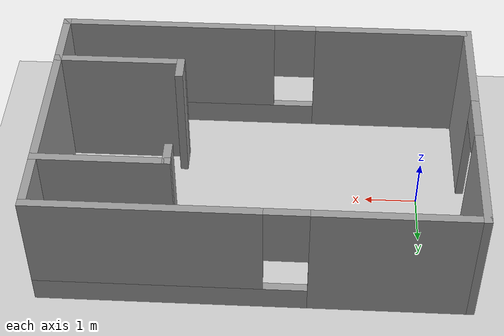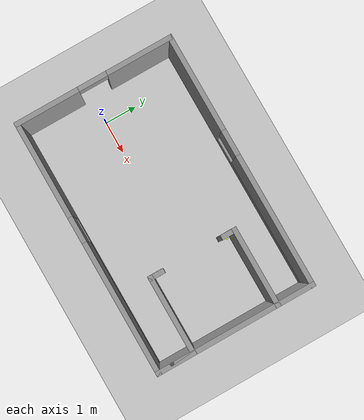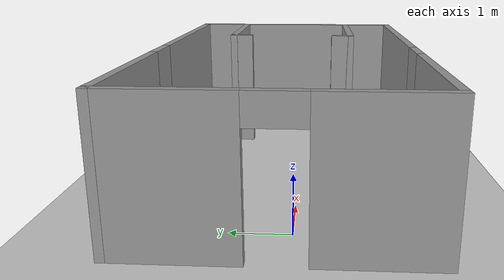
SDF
<sdf version="1.7">
 <world name="default">
  <light name="sun" type="directional">
   <pose>0 0 10 0 -0 0</pose>
   <diffuse>0.8 0.8 0.8 1</diffuse>
   <specular>0.2 0.2 0.2 1</specular>
   <attenuation>
    <range>1000</range>
    <constant>0.9</constant>
    <linear>0.01</linear>
    <quadratic>0.001</quadratic>
   </attenuation>
   <direction>-0.5 0.1 -0.9</direction>
   <spot><inner_angle>0</inner_angle><outer_angle>0</outer_angle><falloff>0</falloff></spot>
  </light>
  <model name="ground_plane">
   <static>1</static>
   <link name="link">
    <collision name="collision">
     <geometry><plane><normal>0 0 1</normal><size>100 100</size></plane></geometry>
     <surface>
      <contact><collide_bitmask>65535</collide_bitmask></contact>
      <friction><ode><mu>100</mu><mu2>50</mu2></ode></friction>
     </surface>
    </collision>
    <visual name="visual">
     <cast_shadows>0</cast_shadows>
     <geometry><plane><normal>0 0 1</normal><size>100 100</size></plane></geometry>
     <material>
      <script><uri>file://media/materials/scripts/gazebo.material</uri><name>Gazebo/Grey</name></script>
     </material>
    </visual>
   </link>
  </model>
  <gravity>0 0 -9.8</gravity>
  <magnetic_field>6e-06 2.3e-05 -4.2e-05</magnetic_field>
  <atmosphere type="adiabatic"/>
  <physics type="ode">
   <max_step_size>0.001</max_step_size>
   <real_time_factor>1</real_time_factor>
   <real_time_update_rate>1000</real_time_update_rate>
  </physics>
  <scene><ambient>0.4 0.4 0.4 1</ambient><background>0.7 0.7 0.7 1</background><shadows>1</shadows></scene>
  <spherical_coordinates>
   <surface_model>EARTH_WGS84</surface_model>
   <latitude_deg>0</latitude_deg>
   <longitude_deg>0</longitude_deg>
   <elevation>0</elevation>
   <heading_deg>0</heading_deg>
  </spherical_coordinates>
  <model name="house">
   <link name="Wall_0">
    <pose>-3.925 0 0 0 0 -1.5708</pose>
    <visual name="Wall_0_Visual_1">
     <pose>1.49555 0 1.25 0 -0 0</pose>
     <geometry><box><size>2.0089 0.15 2.5</size></box></geometry>
     <material>
      <script><uri>file://media/materials/scripts/gazebo.material</uri><name>Gazebo/Grey</name></script>
      <ambient>1 1 1 1</ambient>
      <shader type="pixel"/>
      <emissive>0 0 0 1</emissive>
     </material>
     <meta><layer>0</layer></meta>
    </visual>
    <visual name="Wall_0_Visual_2">
     <pose>0.041099 0 2.25 0 -0 0</pose>
     <geometry><box><size>0.9 0.15 0.5</size></box></geometry>
     <material>
      <script><uri>file://media/materials/scripts/gazebo.material</uri><name>Gazebo/Grey</name></script>
      <ambient>1 1 1 1</ambient>
      <shader type="pixel"/>
      <emissive>0 0 0 1</emissive>
     </material>
     <meta><layer>0</layer></meta>
    </visual>
    <visual name="Wall_0_Visual_0">
     <pose>-1.45445 0 1.25 0 -0 0</pose>
     <geometry><box><size>2.0911 0.15 2.5</size></box></geometry>
     <material>
      <script><uri>file://media/materials/scripts/gazebo.material</uri><name>Gazebo/Grey</name></script>
      <ambient>1 1 1 1</ambient>
      <shader type="pixel"/>
      <emissive>0 0 0 1</emissive>
     </material>
     <meta><layer>0</layer></meta>
    </visual>
    <collision name="Wall_0_Collision_1">
     <pose>1.49555 0 1.25 0 -0 0</pose>
     <geometry><box><size>2.0089 0.15 2.5</size></box></geometry>
     <surface>
      <friction>
       <ode><mu>1</mu><mu2>1</mu2><fdir1>0 0 0</fdir1><slip1>0</slip1><slip2>0</slip2></ode>
       <torsional>
        <coefficient>1</coefficient>
        <patch_radius>0</patch_radius>
        <surface_radius>0</surface_radius>
        <use_patch_radius>1</use_patch_radius>
        <ode><slip>0</slip></ode>
       </torsional>
      </friction>
      <bounce><restitution_coefficient>0</restitution_coefficient><threshold>1e+06</threshold></bounce>
      <contact>
       <collide_without_contact>0</collide_without_contact>
       <collide_without_contact_bitmask>1</collide_without_contact_bitmask>
       <collide_bitmask>1</collide_bitmask>
       <ode>
        <soft_cfm>0</soft_cfm>
        <soft_erp>0.2</soft_erp>
        <kp>1e+13</kp>
        <kd>1</kd>
        <max_vel>0.01</max_vel>
        <min_depth>0</min_depth>
       </ode>
       <bullet>
        <split_impulse>1</split_impulse>
        <split_impulse_penetration_threshold>-0.01</split_impulse_penetration_threshold>
        <soft_cfm>0</soft_cfm>
        <soft_erp>0.2</soft_erp>
        <kp>1e+13</kp>
        <kd>1</kd>
       </bullet>
      </contact>
     </surface>
    </collision>
    <collision name="Wall_0_Collision_0">
     <pose>-1.45445 0 1.25 0 -0 0</pose>
     <geometry><box><size>2.0911 0.15 2.5</size></box></geometry>
     <surface>
      <friction>
       <ode><mu>1</mu><mu2>1</mu2><fdir1>0 0 0</fdir1><slip1>0</slip1><slip2>0</slip2></ode>
       <torsional>
        <coefficient>1</coefficient>
        <patch_radius>0</patch_radius>
        <surface_radius>0</surface_radius>
        <use_patch_radius>1</use_patch_radius>
        <ode><slip>0</slip></ode>
       </torsional>
      </friction>
      <bounce><restitution_coefficient>0</restitution_coefficient><threshold>1e+06</threshold></bounce>
      <contact>
       <collide_without_contact>0</collide_without_contact>
       <collide_without_contact_bitmask>1</collide_without_contact_bitmask>
       <collide_bitmask>1</collide_bitmask>
       <ode>
        <soft_cfm>0</soft_cfm>
        <soft_erp>0.2</soft_erp>
        <kp>1e+13</kp>
        <kd>1</kd>
        <max_vel>0.01</max_vel>
        <min_depth>0</min_depth>
       </ode>
       <bullet>
        <split_impulse>1</split_impulse>
        <split_impulse_penetration_threshold>-0.01</split_impulse_penetration_threshold>
        <soft_cfm>0</soft_cfm>
        <soft_erp>0.2</soft_erp>
        <kp>1e+13</kp>
        <kd>1</kd>
       </bullet>
      </contact>
     </surface>
    </collision>
    <collision name="Wall_0_Collision_2">
     <pose>0.041099 0 2.25 0 -0 0</pose>
     <geometry><box><size>0.9 0.15 0.5</size></box></geometry>
     <surface>
      <friction>
       <ode><mu>1</mu><mu2>1</mu2><fdir1>0 0 0</fdir1><slip1>0</slip1><slip2>0</slip2></ode>
       <torsional>
        <coefficient>1</coefficient>
        <patch_radius>0</patch_radius>
        <surface_radius>0</surface_radius>
        <use_patch_radius>1</use_patch_radius>
        <ode><slip>0</slip></ode>
       </torsional>
      </friction>
      <bounce><restitution_coefficient>0</restitution_coefficient><threshold>1e+06</threshold></bounce>
      <contact>
       <collide_without_contact>0</collide_without_contact>
       <collide_without_contact_bitmask>1</collide_without_contact_bitmask>
       <collide_bitmask>1</collide_bitmask>
       <ode>
        <soft_cfm>0</soft_cfm>
        <soft_erp>0.2</soft_erp>
        <kp>1e+13</kp>
        <kd>1</kd>
        <max_vel>0.01</max_vel>
        <min_depth>0</min_depth>
       </ode>
       <bullet>
        <split_impulse>1</split_impulse>
        <split_impulse_penetration_threshold>-0.01</split_impulse_penetration_threshold>
        <soft_cfm>0</soft_cfm>
        <soft_erp>0.2</soft_erp>
        <kp>1e+13</kp>
        <kd>1</kd>
       </bullet>
      </contact>
     </surface>
    </collision>
   </link>
   <link name="Wall_15">
    <pose>0 2.425 0 0 -0 0</pose>
    <visual name="Wall_15_Visual_1">
     <pose>1.51655 0 0.25 0 -0 0</pose>
     <geometry><box><size>4.96691 0.15 0.5</size></box></geometry>
     <material>
      <script><uri>file://media/materials/scripts/gazebo.material</uri><name>Gazebo/Grey</name></script>
      <ambient>1 1 1 1</ambient>
      <shader type="pixel"/>
     </material>
     <meta><layer>0</layer></meta>
    </visual>
    <visual name="Wall_15_Visual_0">
     <pose>-2.48345 0 1.25 0 -0 0</pose>
     <geometry><box><size>3.03309 0.15 2.5</size></box></geometry>
     <material>
      <script><uri>file://media/materials/scripts/gazebo.material</uri><name>Gazebo/Grey</name></script>
      <ambient>1 1 1 1</ambient>
      <shader type="pixel"/>
     </material>
     <meta><layer>0</layer></meta>
    </visual>
    <visual name="Wall_15_Visual_2">
     <pose>1.91655 0 1.5 0 -0 0</pose>
     <geometry><box><size>4.16691 0.15 2</size></box></geometry>
     <material>
      <script><uri>file://media/materials/scripts/gazebo.material</uri><name>Gazebo/Grey</name></script>
      <ambient>1 1 1 1</ambient>
      <shader type="pixel"/>
     </material>
     <meta><layer>0</layer></meta>
    </visual>
    <visual name="Wall_15_Visual_3">
     <pose>-0.566908 0 1.9 0 -0 0</pose>
     <geometry><box><size>0.8 0.15 1.2</size></box></geometry>
     <material>
      <script><uri>file://media/materials/scripts/gazebo.material</uri><name>Gazebo/Grey</name></script>
      <ambient>1 1 1 1</ambient>
      <shader type="pixel"/>
     </material>
     <meta><layer>0</layer></meta>
    </visual>
    <collision name="Wall_15_Collision_0">
     <pose>-2.48345 0 1.25 0 -0 0</pose>
     <geometry><box><size>3.03309 0.15 2.5</size></box></geometry>
     <surface>
      <friction>
       <ode><mu>1</mu><mu2>1</mu2><fdir1>0 0 0</fdir1><slip1>0</slip1><slip2>0</slip2></ode>
       <torsional>
        <coefficient>1</coefficient>
        <patch_radius>0</patch_radius>
        <surface_radius>0</surface_radius>
        <use_patch_radius>1</use_patch_radius>
        <ode><slip>0</slip></ode>
       </torsional>
      </friction>
      <bounce><restitution_coefficient>0</restitution_coefficient><threshold>1e+06</threshold></bounce>
      <contact>
       <collide_without_contact>0</collide_without_contact>
       <collide_without_contact_bitmask>1</collide_without_contact_bitmask>
       <collide_bitmask>1</collide_bitmask>
       <ode>
        <soft_cfm>0</soft_cfm>
        <soft_erp>0.2</soft_erp>
        <kp>1e+13</kp>
        <kd>1</kd>
        <max_vel>0.01</max_vel>
        <min_depth>0</min_depth>
       </ode>
       <bullet>
        <split_impulse>1</split_impulse>
        <split_impulse_penetration_threshold>-0.01</split_impulse_penetration_threshold>
        <soft_cfm>0</soft_cfm>
        <soft_erp>0.2</soft_erp>
        <kp>1e+13</kp>
        <kd>1</kd>
       </bullet>
      </contact>
     </surface>
    </collision>
    <collision name="Wall_15_Collision_3">
     <pose>-0.566908 0 1.9 0 -0 0</pose>
     <geometry><box><size>0.8 0.15 1.2</size></box></geometry>
     <surface>
      <friction>
       <ode><mu>1</mu><mu2>1</mu2><fdir1>0 0 0</fdir1><slip1>0</slip1><slip2>0</slip2></ode>
       <torsional>
        <coefficient>1</coefficient>
        <patch_radius>0</patch_radius>
        <surface_radius>0</surface_radius>
        <use_patch_radius>1</use_patch_radius>
        <ode><slip>0</slip></ode>
       </torsional>
      </friction>
      <bounce><restitution_coefficient>0</restitution_coefficient><threshold>1e+06</threshold></bounce>
      <contact>
       <collide_without_contact>0</collide_without_contact>
       <collide_without_contact_bitmask>1</collide_without_contact_bitmask>
       <collide_bitmask>1</collide_bitmask>
       <ode>
        <soft_cfm>0</soft_cfm>
        <soft_erp>0.2</soft_erp>
        <kp>1e+13</kp>
        <kd>1</kd>
        <max_vel>0.01</max_vel>
        <min_depth>0</min_depth>
       </ode>
       <bullet>
        <split_impulse>1</split_impulse>
        <split_impulse_penetration_threshold>-0.01</split_impulse_penetration_threshold>
        <soft_cfm>0</soft_cfm>
        <soft_erp>0.2</soft_erp>
        <kp>1e+13</kp>
        <kd>1</kd>
       </bullet>
      </contact>
     </surface>
    </collision>
    <collision name="Wall_15_Collision_2">
     <pose>1.91655 0 1.5 0 -0 0</pose>
     <geometry><box><size>4.16691 0.15 2</size></box></geometry>
     <surface>
      <friction>
       <ode><mu>1</mu><mu2>1</mu2><fdir1>0 0 0</fdir1><slip1>0</slip1><slip2>0</slip2></ode>
       <torsional>
        <coefficient>1</coefficient>
        <patch_radius>0</patch_radius>
        <surface_radius>0</surface_radius>
        <use_patch_radius>1</use_patch_radius>
        <ode><slip>0</slip></ode>
       </torsional>
      </friction>
      <bounce><restitution_coefficient>0</restitution_coefficient><threshold>1e+06</threshold></bounce>
      <contact>
       <collide_without_contact>0</collide_without_contact>
       <collide_without_contact_bitmask>1</collide_without_contact_bitmask>
       <collide_bitmask>1</collide_bitmask>
       <ode>
        <soft_cfm>0</soft_cfm>
        <soft_erp>0.2</soft_erp>
        <kp>1e+13</kp>
        <kd>1</kd>
        <max_vel>0.01</max_vel>
        <min_depth>0</min_depth>
       </ode>
       <bullet>
        <split_impulse>1</split_impulse>
        <split_impulse_penetration_threshold>-0.01</split_impulse_penetration_threshold>
        <soft_cfm>0</soft_cfm>
        <soft_erp>0.2</soft_erp>
        <kp>1e+13</kp>
        <kd>1</kd>
       </bullet>
      </contact>
     </surface>
    </collision>
    <collision name="Wall_15_Collision_1">
     <pose>1.51655 0 0.25 0 -0 0</pose>
     <geometry><box><size>4.96691 0.15 0.5</size></box></geometry>
     <surface>
      <friction>
       <ode><mu>1</mu><mu2>1</mu2><fdir1>0 0 0</fdir1><slip1>0</slip1><slip2>0</slip2></ode>
       <torsional>
        <coefficient>1</coefficient>
        <patch_radius>0</patch_radius>
        <surface_radius>0</surface_radius>
        <use_patch_radius>1</use_patch_radius>
        <ode><slip>0</slip></ode>
       </torsional>
      </friction>
      <bounce><restitution_coefficient>0</restitution_coefficient><threshold>1e+06</threshold></bounce>
      <contact>
       <collide_without_contact>0</collide_without_contact>
       <collide_without_contact_bitmask>1</collide_without_contact_bitmask>
       <collide_bitmask>1</collide_bitmask>
       <ode>
        <soft_cfm>0</soft_cfm>
        <soft_erp>0.2</soft_erp>
        <kp>1e+13</kp>
        <kd>1</kd>
        <max_vel>0.01</max_vel>
        <min_depth>0</min_depth>
       </ode>
       <bullet>
        <split_impulse>1</split_impulse>
        <split_impulse_penetration_threshold>-0.01</split_impulse_penetration_threshold>
        <soft_cfm>0</soft_cfm>
        <soft_erp>0.2</soft_erp>
        <kp>1e+13</kp>
        <kd>1</kd>
       </bullet>
      </contact>
     </surface>
    </collision>
   </link>
   <link name="Wall_17">
    <pose>0 -2.425 0 0 -0 0</pose>
    <visual name="Wall_17_Visual_2">
     <pose>1.91655 0 1.5 0 -0 0</pose>
     <geometry><box><size>4.16691 0.15 2</size></box></geometry>
     <material>
      <script><uri>file://media/materials/scripts/gazebo.material</uri><name>Gazebo/Grey</name></script>
      <ambient>1 1 1 1</ambient>
      <shader type="pixel"/>
      <emissive>0 0 0 1</emissive>
     </material>
     <meta><layer>0</layer></meta>
    </visual>
    <visual name="Wall_17_Visual_1">
     <pose>1.51655 0 0.25 0 -0 0</pose>
     <geometry><box><size>4.96691 0.15 0.5</size></box></geometry>
     <material>
      <script><uri>file://media/materials/scripts/gazebo.material</uri><name>Gazebo/Grey</name></script>
      <ambient>1 1 1 1</ambient>
      <shader type="pixel"/>
      <emissive>0 0 0 1</emissive>
     </material>
     <meta><layer>0</layer></meta>
    </visual>
    <visual name="Wall_17_Visual_0">
     <pose>-2.48345 0 1.25 0 -0 0</pose>
     <geometry><box><size>3.03309 0.15 2.5</size></box></geometry>
     <material>
      <script><uri>file://media/materials/scripts/gazebo.material</uri><name>Gazebo/Grey</name></script>
      <ambient>1 1 1 1</ambient>
      <shader type="pixel"/>
      <emissive>0 0 0 1</emissive>
     </material>
     <meta><layer>0</layer></meta>
    </visual>
    <visual name="Wall_17_Visual_3">
     <pose>-0.566908 0 1.9 0 -0 0</pose>
     <geometry><box><size>0.8 0.15 1.2</size></box></geometry>
     <material>
      <script><uri>file://media/materials/scripts/gazebo.material</uri><name>Gazebo/Grey</name></script>
      <ambient>1 1 1 1</ambient>
      <shader type="pixel"/>
      <emissive>0 0 0 1</emissive>
     </material>
     <meta><layer>0</layer></meta>
    </visual>
    <collision name="Wall_17_Collision_1">
     <pose>1.51655 0 0.25 0 -0 0</pose>
     <geometry><box><size>4.96691 0.15 0.5</size></box></geometry>
     <surface>
      <friction>
       <ode><mu>1</mu><mu2>1</mu2><fdir1>0 0 0</fdir1><slip1>0</slip1><slip2>0</slip2></ode>
       <torsional>
        <coefficient>1</coefficient>
        <patch_radius>0</patch_radius>
        <surface_radius>0</surface_radius>
        <use_patch_radius>1</use_patch_radius>
        <ode><slip>0</slip></ode>
       </torsional>
      </friction>
      <bounce><restitution_coefficient>0</restitution_coefficient><threshold>1e+06</threshold></bounce>
      <contact>
       <collide_without_contact>0</collide_without_contact>
       <collide_without_contact_bitmask>1</collide_without_contact_bitmask>
       <collide_bitmask>1</collide_bitmask>
       <ode>
        <soft_cfm>0</soft_cfm>
        <soft_erp>0.2</soft_erp>
        <kp>1e+13</kp>
        <kd>1</kd>
        <max_vel>0.01</max_vel>
        <min_depth>0</min_depth>
       </ode>
       <bullet>
        <split_impulse>1</split_impulse>
        <split_impulse_penetration_threshold>-0.01</split_impulse_penetration_threshold>
        <soft_cfm>0</soft_cfm>
        <soft_erp>0.2</soft_erp>
        <kp>1e+13</kp>
        <kd>1</kd>
       </bullet>
      </contact>
     </surface>
    </collision>
    <collision name="Wall_17_Collision_3">
     <pose>-0.566908 0 1.9 0 -0 0</pose>
     <geometry><box><size>0.8 0.15 1.2</size></box></geometry>
     <surface>
      <friction>
       <ode><mu>1</mu><mu2>1</mu2><fdir1>0 0 0</fdir1><slip1>0</slip1><slip2>0</slip2></ode>
       <torsional>
        <coefficient>1</coefficient>
        <patch_radius>0</patch_radius>
        <surface_radius>0</surface_radius>
        <use_patch_radius>1</use_patch_radius>
        <ode><slip>0</slip></ode>
       </torsional>
      </friction>
      <bounce><restitution_coefficient>0</restitution_coefficient><threshold>1e+06</threshold></bounce>
      <contact>
       <collide_without_contact>0</collide_without_contact>
       <collide_without_contact_bitmask>1</collide_without_contact_bitmask>
       <collide_bitmask>1</collide_bitmask>
       <ode>
        <soft_cfm>0</soft_cfm>
        <soft_erp>0.2</soft_erp>
        <kp>1e+13</kp>
        <kd>1</kd>
        <max_vel>0.01</max_vel>
        <min_depth>0</min_depth>
       </ode>
       <bullet>
        <split_impulse>1</split_impulse>
        <split_impulse_penetration_threshold>-0.01</split_impulse_penetration_threshold>
        <soft_cfm>0</soft_cfm>
        <soft_erp>0.2</soft_erp>
        <kp>1e+13</kp>
        <kd>1</kd>
       </bullet>
      </contact>
     </surface>
    </collision>
    <collision name="Wall_17_Collision_0">
     <pose>-2.48345 0 1.25 0 -0 0</pose>
     <geometry><box><size>3.03309 0.15 2.5</size></box></geometry>
     <surface>
      <friction>
       <ode><mu>1</mu><mu2>1</mu2><fdir1>0 0 0</fdir1><slip1>0</slip1><slip2>0</slip2></ode>
       <torsional>
        <coefficient>1</coefficient>
        <patch_radius>0</patch_radius>
        <surface_radius>0</surface_radius>
        <use_patch_radius>1</use_patch_radius>
        <ode><slip>0</slip></ode>
       </torsional>
      </friction>
      <bounce><restitution_coefficient>0</restitution_coefficient><threshold>1e+06</threshold></bounce>
      <contact>
       <collide_without_contact>0</collide_without_contact>
       <collide_without_contact_bitmask>1</collide_without_contact_bitmask>
       <collide_bitmask>1</collide_bitmask>
       <ode>
        <soft_cfm>0</soft_cfm>
        <soft_erp>0.2</soft_erp>
        <kp>1e+13</kp>
        <kd>1</kd>
        <max_vel>0.01</max_vel>
        <min_depth>0</min_depth>
       </ode>
       <bullet>
        <split_impulse>1</split_impulse>
        <split_impulse_penetration_threshold>-0.01</split_impulse_penetration_threshold>
        <soft_cfm>0</soft_cfm>
        <soft_erp>0.2</soft_erp>
        <kp>1e+13</kp>
        <kd>1</kd>
       </bullet>
      </contact>
     </surface>
    </collision>
    <collision name="Wall_17_Collision_2">
     <pose>1.91655 0 1.5 0 -0 0</pose>
     <geometry><box><size>4.16691 0.15 2</size></box></geometry>
     <surface>
      <friction>
       <ode><mu>1</mu><mu2>1</mu2><fdir1>0 0 0</fdir1><slip1>0</slip1><slip2>0</slip2></ode>
       <torsional>
        <coefficient>1</coefficient>
        <patch_radius>0</patch_radius>
        <surface_radius>0</surface_radius>
        <use_patch_radius>1</use_patch_radius>
        <ode><slip>0</slip></ode>
       </torsional>
      </friction>
      <bounce><restitution_coefficient>0</restitution_coefficient><threshold>1e+06</threshold></bounce>
      <contact>
       <collide_without_contact>0</collide_without_contact>
       <collide_without_contact_bitmask>1</collide_without_contact_bitmask>
       <collide_bitmask>1</collide_bitmask>
       <ode>
        <soft_cfm>0</soft_cfm>
        <soft_erp>0.2</soft_erp>
        <kp>1e+13</kp>
        <kd>1</kd>
        <max_vel>0.01</max_vel>
        <min_depth>0</min_depth>
       </ode>
       <bullet>
        <split_impulse>1</split_impulse>
        <split_impulse_penetration_threshold>-0.01</split_impulse_penetration_threshold>
        <soft_cfm>0</soft_cfm>
        <soft_erp>0.2</soft_erp>
        <kp>1e+13</kp>
        <kd>1</kd>
       </bullet>
      </contact>
     </surface>
    </collision>
   </link>
   <link name="Wall_18">
    <pose>3.925 0 0 0 -0 1.5708</pose>
    <visual name="Wall_18_Visual">
     <pose>0 0 1.25 0 -0 0</pose>
     <geometry><box><size>5 0.15 2.5</size></box></geometry>
     <material>
      <script><uri>file://media/materials/scripts/gazebo.material</uri><name>Gazebo/Grey</name></script>
      <ambient>1 1 1 1</ambient>
      <shader type="pixel"/>
     </material>
     <meta><layer>0</layer></meta>
    </visual>
    <collision name="Wall_18_Collision">
     <pose>0 0 1.25 0 -0 0</pose>
     <geometry><box><size>5 0.15 2.5</size></box></geometry>
     <surface>
      <friction>
       <ode><mu>1</mu><mu2>1</mu2><fdir1>0 0 0</fdir1><slip1>0</slip1><slip2>0</slip2></ode>
       <torsional>
        <coefficient>1</coefficient>
        <patch_radius>0</patch_radius>
        <surface_radius>0</surface_radius>
        <use_patch_radius>1</use_patch_radius>
        <ode><slip>0</slip></ode>
       </torsional>
      </friction>
      <bounce><restitution_coefficient>0</restitution_coefficient><threshold>1e+06</threshold></bounce>
      <contact>
       <collide_without_contact>0</collide_without_contact>
       <collide_without_contact_bitmask>1</collide_without_contact_bitmask>
       <collide_bitmask>1</collide_bitmask>
       <ode>
        <soft_cfm>0</soft_cfm>
        <soft_erp>0.2</soft_erp>
        <kp>1e+13</kp>
        <kd>1</kd>
        <max_vel>0.01</max_vel>
        <min_depth>0</min_depth>
       </ode>
       <bullet>
        <split_impulse>1</split_impulse>
        <split_impulse_penetration_threshold>-0.01</split_impulse_penetration_threshold>
        <soft_cfm>0</soft_cfm>
        <soft_erp>0.2</soft_erp>
        <kp>1e+13</kp>
        <kd>1</kd>
       </bullet>
      </contact>
     </surface>
    </collision>
   </link>
   <link name="Wall_21">
    <pose>2.75 1.325 0 0 -0 3.14159</pose>
    <visual name="Wall_21_Visual">
     <pose>0 0 1.25 0 -0 0</pose>
     <geometry><box><size>2.5 0.15 2.5</size></box></geometry>
     <material>
      <script><uri>file://media/materials/scripts/gazebo.material</uri><name>Gazebo/Grey</name></script>
      <ambient>1 1 1 1</ambient>
      <shader type="pixel"/>
     </material>
     <meta><layer>0</layer></meta>
    </visual>
    <collision name="Wall_21_Collision">
     <pose>0 0 1.25 0 -0 0</pose>
     <geometry><box><size>2.5 0.15 2.5</size></box></geometry>
     <surface>
      <friction>
       <ode><mu>1</mu><mu2>1</mu2><fdir1>0 0 0</fdir1><slip1>0</slip1><slip2>0</slip2></ode>
       <torsional>
        <coefficient>1</coefficient>
        <patch_radius>0</patch_radius>
        <surface_radius>0</surface_radius>
        <use_patch_radius>1</use_patch_radius>
        <ode><slip>0</slip></ode>
       </torsional>
      </friction>
      <bounce><restitution_coefficient>0</restitution_coefficient><threshold>1e+06</threshold></bounce>
      <contact>
       <collide_without_contact>0</collide_without_contact>
       <collide_without_contact_bitmask>1</collide_without_contact_bitmask>
       <collide_bitmask>1</collide_bitmask>
       <ode>
        <soft_cfm>0</soft_cfm>
        <soft_erp>0.2</soft_erp>
        <kp>1e+13</kp>
        <kd>1</kd>
        <max_vel>0.01</max_vel>
        <min_depth>0</min_depth>
       </ode>
       <bullet>
        <split_impulse>1</split_impulse>
        <split_impulse_penetration_threshold>-0.01</split_impulse_penetration_threshold>
        <soft_cfm>0</soft_cfm>
        <soft_erp>0.2</soft_erp>
        <kp>1e+13</kp>
        <kd>1</kd>
       </bullet>
      </contact>
     </surface>
    </collision>
   </link>
   <link name="Wall_23">
    <pose>3.925 -1.875 0 0 -0 1.5708</pose>
    <visual name="Wall_23_Visual">
     <pose>0 0 1.25 0 -0 0</pose>
     <geometry><box><size>1.25 0.15 2.5</size></box></geometry>
     <material>
      <script><uri>file://media/materials/scripts/gazebo.material</uri><name>Gazebo/Grey</name></script>
      <ambient>1 1 1 1</ambient>
      <shader type="pixel"/>
     </material>
     <meta><layer>0</layer></meta>
    </visual>
    <collision name="Wall_23_Collision">
     <pose>0 0 1.25 0 -0 0</pose>
     <geometry><box><size>1.25 0.15 2.5</size></box></geometry>
     <surface>
      <friction>
       <ode><mu>1</mu><mu2>1</mu2><fdir1>0 0 0</fdir1><slip1>0</slip1><slip2>0</slip2></ode>
       <torsional>
        <coefficient>1</coefficient>
        <patch_radius>0</patch_radius>
        <surface_radius>0</surface_radius>
        <use_patch_radius>1</use_patch_radius>
        <ode><slip>0</slip></ode>
       </torsional>
      </friction>
      <bounce><restitution_coefficient>0</restitution_coefficient><threshold>1e+06</threshold></bounce>
      <contact>
       <collide_without_contact>0</collide_without_contact>
       <collide_without_contact_bitmask>1</collide_without_contact_bitmask>
       <collide_bitmask>1</collide_bitmask>
       <ode>
        <soft_cfm>0</soft_cfm>
        <soft_erp>0.2</soft_erp>
        <kp>1e+13</kp>
        <kd>1</kd>
        <max_vel>0.01</max_vel>
        <min_depth>0</min_depth>
       </ode>
       <bullet>
        <split_impulse>1</split_impulse>
        <split_impulse_penetration_threshold>-0.01</split_impulse_penetration_threshold>
        <soft_cfm>0</soft_cfm>
        <soft_erp>0.2</soft_erp>
        <kp>1e+13</kp>
        <kd>1</kd>
       </bullet>
      </contact>
     </surface>
    </collision>
   </link>
   <link name="Wall_27">
    <pose>1.57789 1.15 0 0 0 -1.5708</pose>
    <inertial>
     <mass>1</mass>
     <inertia><ixx>1</ixx><ixy>0</ixy><ixz>0</ixz><iyy>1</iyy><iyz>0</iyz><izz>1</izz></inertia>
    </inertial>
    <visual name="Wall_27_Visual">
     <pose>0 0 1.25 0 -0 0</pose>
     <geometry><box><size>0.5 0.15 2.5</size></box></geometry>
     <material>
      <script><uri>file://media/materials/scripts/gazebo.material</uri><name>Gazebo/Grey</name></script>
      <ambient>1 1 1 1</ambient>
      <shader type="pixel"><normal_map>__default__</normal_map></shader>
      <emissive>0 0 0 1</emissive>
      <diffuse>0.7 0.7 0.7 1</diffuse>
      <specular>0.01 0.01 0.01 1</specular>
     </material>
     <meta><layer>0</layer></meta>
    </visual>
    <collision name="Wall_27_Collision">
     <pose>0 0 1.25 0 -0 0</pose>
     <geometry><box><size>0.5 0.15 2.5</size></box></geometry>
     <surface>
      <friction>
       <ode><mu>1</mu><mu2>1</mu2><fdir1>0 0 0</fdir1><slip1>0</slip1><slip2>0</slip2></ode>
       <torsional>
        <coefficient>1</coefficient>
        <patch_radius>0</patch_radius>
        <surface_radius>0</surface_radius>
        <use_patch_radius>1</use_patch_radius>
        <ode><slip>0</slip></ode>
       </torsional>
      </friction>
      <bounce><restitution_coefficient>0</restitution_coefficient><threshold>1e+06</threshold></bounce>
      <contact>
       <collide_without_contact>0</collide_without_contact>
       <collide_without_contact_bitmask>1</collide_without_contact_bitmask>
       <collide_bitmask>1</collide_bitmask>
       <ode>
        <soft_cfm>0</soft_cfm>
        <soft_erp>0.2</soft_erp>
        <kp>1e+13</kp>
        <kd>1</kd>
        <max_vel>0.01</max_vel>
        <min_depth>0</min_depth>
       </ode>
       <bullet>
        <split_impulse>1</split_impulse>
        <split_impulse_penetration_threshold>-0.01</split_impulse_penetration_threshold>
        <soft_cfm>0</soft_cfm>
        <soft_erp>0.2</soft_erp>
        <kp>1e+13</kp>
        <kd>1</kd>
       </bullet>
      </contact>
     </surface>
    </collision>
   </link>
   <link name="Wall_31">
    <pose>2.75 -1.325 0 0 -0 3.14159</pose>
    <visual name="Wall_31_Visual">
     <pose>0 0 1.25 0 -0 0</pose>
     <geometry><box><size>2.5 0.15 2.5</size></box></geometry>
     <material>
      <script><uri>file://media/materials/scripts/gazebo.material</uri><name>Gazebo/Grey</name></script>
      <ambient>1 1 1 1</ambient>
      <shader type="pixel"/>
     </material>
     <meta><layer>0</layer></meta>
    </visual>
    <collision name="Wall_31_Collision">
     <pose>0 0 1.25 0 -0 0</pose>
     <geometry><box><size>2.5 0.15 2.5</size></box></geometry>
     <surface>
      <friction>
       <ode><mu>1</mu><mu2>1</mu2><fdir1>0 0 0</fdir1><slip1>0</slip1><slip2>0</slip2></ode>
       <torsional>
        <coefficient>1</coefficient>
        <patch_radius>0</patch_radius>
        <surface_radius>0</surface_radius>
        <use_patch_radius>1</use_patch_radius>
        <ode><slip>0</slip></ode>
       </torsional>
      </friction>
      <bounce><restitution_coefficient>0</restitution_coefficient><threshold>1e+06</threshold></bounce>
      <contact>
       <collide_without_contact>0</collide_without_contact>
       <collide_without_contact_bitmask>1</collide_without_contact_bitmask>
       <collide_bitmask>1</collide_bitmask>
       <ode>
        <soft_cfm>0</soft_cfm>
        <soft_erp>0.2</soft_erp>
        <kp>1e+13</kp>
        <kd>1</kd>
        <max_vel>0.01</max_vel>
        <min_depth>0</min_depth>
       </ode>
       <bullet>
        <split_impulse>1</split_impulse>
        <split_impulse_penetration_threshold>-0.01</split_impulse_penetration_threshold>
        <soft_cfm>0</soft_cfm>
        <soft_erp>0.2</soft_erp>
        <kp>1e+13</kp>
        <kd>1</kd>
       </bullet>
      </contact>
     </surface>
    </collision>
   </link>
   <link name="Wall_32">
    <pose>1.575 -1.15 0 0 -0 1.5708</pose>
    <inertial>
     <mass>1</mass>
     <inertia><ixx>1</ixx><ixy>0</ixy><ixz>0</ixz><iyy>1</iyy><iyz>0</iyz><izz>1</izz></inertia>
    </inertial>
    <visual name="Wall_32_Visual">
     <pose>0 0 1.25 0 -0 0</pose>
     <geometry><box><size>0.5 0.15 2.5</size></box></geometry>
     <material>
      <script><uri>file://media/materials/scripts/gazebo.material</uri><name>Gazebo/Grey</name></script>
      <ambient>1 1 1 1</ambient>
      <shader type="pixel"><normal_map>__default__</normal_map></shader>
      <emissive>0 0 0 1</emissive>
      <diffuse>0.7 0.7 0.7 1</diffuse>
      <specular>0.01 0.01 0.01 1</specular>
     </material>
     <meta><layer>0</layer></meta>
    </visual>
    <collision name="Wall_32_Collision">
     <pose>0 0 1.25 0 -0 0</pose>
     <geometry><box><size>0.5 0.15 2.5</size></box></geometry>
     <surface>
      <friction>
       <ode><mu>1</mu><mu2>1</mu2><fdir1>0 0 0</fdir1><slip1>0</slip1><slip2>0</slip2></ode>
       <torsional>
        <coefficient>1</coefficient>
        <patch_radius>0</patch_radius>
        <surface_radius>0</surface_radius>
        <use_patch_radius>1</use_patch_radius>
        <ode><slip>0</slip></ode>
       </torsional>
      </friction>
      <bounce><restitution_coefficient>0</restitution_coefficient><threshold>1e+06</threshold></bounce>
      <contact>
       <collide_without_contact>0</collide_without_contact>
       <collide_without_contact_bitmask>1</collide_without_contact_bitmask>
       <collide_bitmask>1</collide_bitmask>
       <ode>
        <soft_cfm>0</soft_cfm>
        <soft_erp>0.2</soft_erp>
        <kp>1e+13</kp>
        <kd>1</kd>
        <max_vel>0.01</max_vel>
        <min_depth>0</min_depth>
       </ode>
       <bullet>
        <split_impulse>1</split_impulse>
        <split_impulse_penetration_threshold>-0.01</split_impulse_penetration_threshold>
        <soft_cfm>0</soft_cfm>
        <soft_erp>0.2</soft_erp>
        <kp>1e+13</kp>
        <kd>1</kd>
       </bullet>
      </contact>
     </surface>
    </collision>
   </link>
   <model name="y_circle">
    <link name="link_0">
     <inertial>
      <mass>1</mass>
      <inertia><ixx>0.145833</ixx><ixy>0</ixy><ixz>0</ixz><iyy>0.145833</iyy><iyz>0</iyz><izz>0.125</izz></inertia>
     </inertial>
     <visual name="visual">
      <pose>0 0 0 1.57 -0 0</pose>
      <geometry><cylinder><radius>0.025</radius><length>0.01</length></cylinder></geometry>
      <material>
       <lighting>1</lighting>
       <script><uri>file://media/materials/scripts/gazebo.material</uri><name>Gazebo/Grey</name></script>
       <shader type="pixel"><normal_map>__default__</normal_map></shader>
       <ambient>1 1 0 1</ambient>
       <diffuse>1 1 0 1</diffuse>
       <specular>1 1 0 1</specular>
       <emissive>1 1 0 1</emissive>
      </material>
     </visual>
     <collision name="collision">
      <pose>0 0 0 1.57 -0 0</pose>
      <geometry><cylinder><radius>0.025</radius><length>0.01</length></cylinder></geometry>
      <surface>
       <friction>
        <ode><mu>1</mu><mu2>1</mu2><fdir1>0 0 0</fdir1><slip1>0</slip1><slip2>0</slip2></ode>
        <torsional>
         <coefficient>1</coefficient>
         <patch_radius>0</patch_radius>
         <surface_radius>0</surface_radius>
         <use_patch_radius>1</use_patch_radius>
         <ode><slip>0</slip></ode>
        </torsional>
       </friction>
       <bounce><restitution_coefficient>0</restitution_coefficient><threshold>1e+06</threshold></bounce>
       <contact>
        <collide_without_contact>0</collide_without_contact>
        <collide_without_contact_bitmask>1</collide_without_contact_bitmask>
        <collide_bitmask>1</collide_bitmask>
        <ode>
         <soft_cfm>0</soft_cfm>
         <soft_erp>0.2</soft_erp>
         <kp>1e+13</kp>
         <kd>1</kd>
         <max_vel>0.01</max_vel>
         <min_depth>0</min_depth>
        </ode>
        <bullet>
         <split_impulse>1</split_impulse>
         <split_impulse_penetration_threshold>-0.01</split_impulse_penetration_threshold>
         <soft_cfm>0</soft_cfm>
         <soft_erp>0.2</soft_erp>
         <kp>1e+13</kp>
         <kd>1</kd>
        </bullet>
       </contact>
      </surface>
     </collision>
    </link>
    <static>0</static>
    <pose>1.66262 -1.09764 0.761415 0 0 -1.55995</pose>
   </model>
   <model name="y_cube">
    <link name="link_1">
     <inertial>
      <mass>1</mass>
      <inertia>
       <ixx>0.166667</ixx>
       <ixy>0</ixy>
       <ixz>0</ixz>
       <iyy>0.166667</iyy>
       <iyz>0</iyz>
       <izz>0.166667</izz>
      </inertia>
     </inertial>
     <visual name="visual">
      <geometry><box><size>0.05 0.05 0.05</size></box></geometry>
      <material>
       <lighting>1</lighting>
       <script><uri>file://media/materials/scripts/gazebo.material</uri><name>Gazebo/Grey</name></script>
       <shader type="pixel"><normal_map>__default__</normal_map></shader>
       <ambient>1 1 0 1</ambient>
       <diffuse>1 1 0 1</diffuse>
       <specular>1 1 0 1</specular>
       <emissive>1 1 0 1</emissive>
      </material>
     </visual>
     <collision name="collision">
      <geometry><box><size>0.05 0.05 0.05</size></box></geometry>
      <surface>
       <friction>
        <ode><mu>1</mu><mu2>1</mu2><fdir1>0 0 0</fdir1><slip1>0</slip1><slip2>0</slip2></ode>
        <torsional>
         <coefficient>1</coefficient>
         <patch_radius>0</patch_radius>
         <surface_radius>0</surface_radius>
         <use_patch_radius>1</use_patch_radius>
         <ode><slip>0</slip></ode>
        </torsional>
       </friction>
       <bounce><restitution_coefficient>0</restitution_coefficient><threshold>1e+06</threshold></bounce>
       <contact>
        <collide_without_contact>0</collide_without_contact>
        <collide_without_contact_bitmask>1</collide_without_contact_bitmask>
        <collide_bitmask>1</collide_bitmask>
        <ode>
         <soft_cfm>0</soft_cfm>
         <soft_erp>0.2</soft_erp>
         <kp>1e+13</kp>
         <kd>1</kd>
         <max_vel>0.01</max_vel>
         <min_depth>0</min_depth>
        </ode>
        <bullet>
         <split_impulse>1</split_impulse>
         <split_impulse_penetration_threshold>-0.01</split_impulse_penetration_threshold>
         <soft_cfm>0</soft_cfm>
         <soft_erp>0.2</soft_erp>
         <kp>1e+13</kp>
         <kd>1</kd>
        </bullet>
       </contact>
      </surface>
     </collision>
    </link>
    <static>0</static>
    <pose>1.68438 1.12468 0.803584 0 -0 0</pose>
   </model>
   <joint name="Wall_27_JOINT_1" type="revolute">
    <parent>Wall_27</parent>
    <child>y_cube::link_1</child>
    <axis>
     <xyz>1 0 0</xyz>
     <limit>
      <lower>-1.79769e+308</lower>
      <upper>1.79769e+308</upper>
      <effort>-1</effort>
      <velocity>-1</velocity>
     </limit>
     <dynamics>
      <spring_reference>0</spring_reference>
      <spring_stiffness>0</spring_stiffness>
      <damping>0</damping>
      <friction>0</friction>
     </dynamics>
    </axis>
    <physics>
     <ode><limit><cfm>0</cfm><erp>0.2</erp></limit><suspension><cfm>0</cfm><erp>0.2</erp></suspension></ode>
    </physics>
   </joint>
   <joint name="Wall_32_JOINT_0" type="revolute">
    <parent>Wall_32</parent>
    <child>y_circle::link_0</child>
    <axis>
     <xyz>1 0 0</xyz>
     <limit>
      <lower>-1.79769e+308</lower>
      <upper>1.79769e+308</upper>
      <effort>-1</effort>
      <velocity>-1</velocity>
     </limit>
     <dynamics>
      <spring_reference>0</spring_reference>
      <spring_stiffness>0</spring_stiffness>
      <damping>0</damping>
      <friction>0</friction>
     </dynamics>
    </axis>
    <physics>
     <ode><limit><cfm>0</cfm><erp>0.2</erp></limit><suspension><cfm>0</cfm><erp>0.2</erp></suspension></ode>
    </physics>
   </joint>
   <static>1</static>
   <pose>3.05854 0.236891 0 0 -0 0</pose>
  </model>
 </world>
</sdf>
